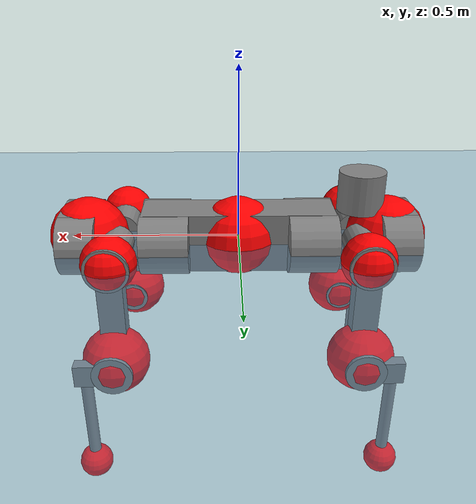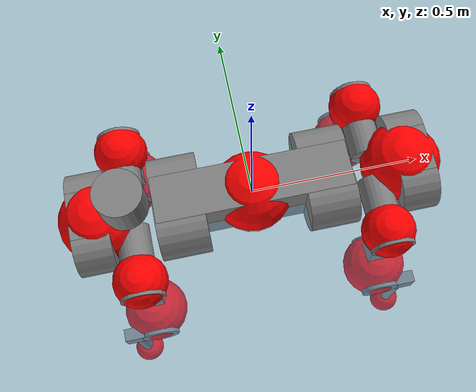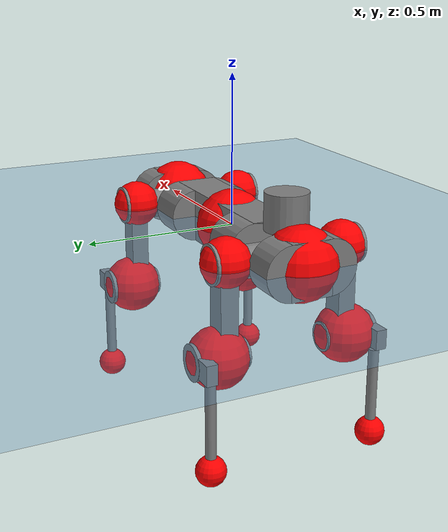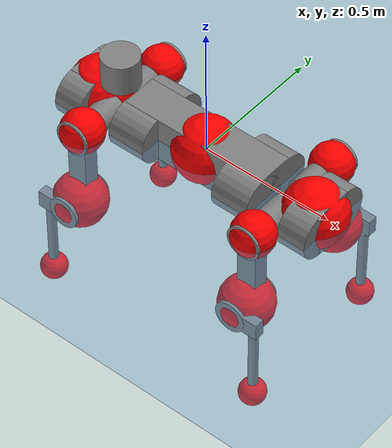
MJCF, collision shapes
<mujoco model="anymal_c">
  <compiler angle="radian" assetdir="assets" balanceinertia="true" inertiafromgeom="false"/>

  <option timestep="0.005" density="1.2" viscosity="2e-05"/>

  <size nkey="1"/>

  <visual>
    <quality shadowsize="8192"/>
    <map shadowclip="0.5"/>
  </visual>

  <default>
    <default class="/">
      <material specular="0" shininess="0.25"/>
      <geom contype="0" conaffinity="0" group="1" solref="-1000 -80"/>
      <site size="0.01 0.005 0.005" group="5"/>
      <general forcelimited="true" forcerange="-80 80" biastype="affine" gainprm="80" biasprm="0 -80 -2"/>
      <default class="anymal_c">
        <joint armature="0.01" damping="0.01" frictionloss="0.1"/>
        <default class="visual">
          <geom type="mesh" group="2"/>
          <default class="visual_zflip"/>
        </default>
        <default class="collision">
          <geom type="cylinder" group="3"/>
          <default class="foot">
            <geom size="0.03 0 0" type="sphere" condim="6" priority="1" friction="0.8 0.02 0.01" solimp="0.015 1 0.03"/>
          </default>
        </default>
      </default>
      <default class="reward_collision_sphere">
        <geom group="5" rgba="1 0 0 1"/>
      </default>
    </default>
  </default>

  <asset>
    <texture type="skybox" colorspace="auto" name="//unnamed_texture_0" builtin="gradient" rgb1="0.95 0.95 0.95" rgb2="0.95 0.95 0.95" width="100" height="600"/>
    <texture type="2d" colorspace="auto" name="texplane" builtin="checker" rgb1="0.345 0.575 0.748" rgb2="0.345 0.575 0.748" markrgb="1 1 1" width="512" height="512"/>
    <texture type="2d" colorspace="linear" name="base" file="base.png"/>
    <texture type="2d" colorspace="linear" name="top_shell" file="top_shell.png"/>
    <texture type="2d" colorspace="linear" name="bottom_shell" file="bottom_shell.png"/>
    <texture type="2d" colorspace="linear" name="remote" file="remote.png"/>
    <texture type="2d" colorspace="linear" name="hatch" file="hatch.png"/>
    <texture type="2d" colorspace="linear" name="handle" file="handle.png"/>
    <texture type="2d" colorspace="linear" name="face" file="face.png"/>
    <texture type="2d" colorspace="linear" name="battery" file="battery.png"/>
    <texture type="2d" colorspace="linear" name="lidar_cage" file="lidar_cage.png"/>
    <texture type="2d" colorspace="linear" name="depth_camera" file="depth_camera.png"/>
    <texture type="2d" colorspace="linear" name="wide_angle_camera" file="wide_angle_camera.png"/>
    <texture type="2d" colorspace="linear" name="lidar" file="lidar.png"/>
    <texture type="2d" colorspace="linear" name="drive" file="drive.png"/>
    <texture type="2d" colorspace="linear" name="hip_l" file="hip_l.png"/>
    <texture type="2d" colorspace="linear" name="shank_l" file="shank_l.png"/>
    <texture type="2d" colorspace="linear" name="foot" file="foot.png"/>
    <texture type="2d" colorspace="linear" name="thigh" file="thigh.png"/>
    <texture type="2d" colorspace="linear" name="shank_r" file="shank_r.png"/>
    <texture type="2d" colorspace="linear" name="hip_r" file="hip_r.png"/>
    <material name="MatPlane" class="/" texture="texplane" texuniform="true" texrepeat="2 2" specular="0.9" shininess="0.5"/>
    <material name="black_plastic" class="/" rgba="0.007 0.007 0.007 1"/>
    <material name="green" class="/" rgba="0.052 0.178 0.033 1"/>
    <material name="red" class="/" rgba="0.178 0.006 0.005 1"/>
    <material name="yellow" class="/" rgba="0.178 0.119 0.006 1"/>
    <material name="lwl" class="/" rgba="0.8 0.8 0.8 1"/>
    <material name="base" class="/" texture="base"/>
    <material name="top_shell" class="/" texture="top_shell"/>
    <material name="bottom_shell" class="/" texture="bottom_shell"/>
    <material name="hip_l" class="/" texture="hip_l"/>
    <material name="thigh" class="/" texture="thigh"/>
    <material name="shank_l" class="/" texture="shank_l"/>
    <material name="foot" class="/" texture="foot"/>
    <material name="hip_r" class="/" texture="hip_r"/>
    <material name="shank" class="/" texture="shank_r"/>
    <material name="hatch" class="/" texture="hatch"/>
    <material name="remote" class="/" texture="remote"/>
    <material name="handle" class="/" texture="handle"/>
    <material name="face" class="/" texture="face"/>
    <material name="depth_camera" class="/" texture="depth_camera"/>
    <material name="wide_angle_camera" class="/" texture="wide_angle_camera"/>
    <material name="battery" class="/" texture="battery"/>
    <material name="lidar_cage" class="/" texture="lidar_cage"/>
    <material name="lidar" class="/" texture="lidar"/>
    <material name="drive" class="/" texture="drive"/>
    <mesh name="base_0" class="/" file="base_0.obj"/>
    <mesh name="base_1" class="/" file="base_1.obj"/>
    <mesh name="base_2" class="/" file="base_2.obj"/>
    <mesh name="base_3" class="/" file="base_3.obj"/>
    <mesh name="base_4" class="/" file="base_4.obj"/>
    <mesh name="base_5" class="/" file="base_5.obj"/>
    <mesh name="top_shell" class="/" file="top_shell.obj"/>
    <mesh name="bottom_shell" class="/" file="bottom_shell.obj"/>
    <mesh name="remote" class="/" file="remote.obj"/>
    <mesh name="handle" class="/" file="handle.obj"/>
    <mesh name="face" class="/" file="face.obj"/>
    <mesh name="wide_angle_camera" class="/" file="wide_angle_camera.obj"/>
    <mesh name="depth_camera" class="/" file="depth_camera.obj"/>
    <mesh name="battery" class="/" file="battery.obj"/>
    <mesh name="lidar_cage" class="/" file="lidar_cage.obj"/>
    <mesh name="lidar" class="/" file="lidar.obj"/>
    <mesh name="drive" class="/" file="drive.obj"/>
    <mesh name="hip_l" class="/" file="hip_l.obj"/>
    <mesh name="thigh" class="/" file="thigh.obj"/>
    <mesh name="shank_l" class="/" file="shank_l.obj"/>
    <mesh name="foot" class="/" file="foot.obj"/>
    <mesh name="hip_r" class="/" file="hip_r.obj"/>
    <mesh name="hatch" class="/" file="hatch.obj"/>
    <mesh name="shank_r" class="/" file="shank_r.obj"/>
  </asset>

  <worldbody>
    <geom name="floor" class="/" size="100 100 0.125" type="plane" group="0" material="MatPlane"/>
    <light name="toplight_shadow" class="/" pos="0 0 5" dir="0.0990148 0.0990148 -0.990148" type="directional" ambient="0.04 0.04 0.04" diffuse="0.55 0.55 0.55" specular="0.12 0.12 0.12"/>
    <light name="toplight_fill" class="/" pos="0 0 5" dir="0.0990148 0.0990148 -0.990148" type="directional" castshadow="false" ambient="0.04 0.04 0.04" diffuse="0.3 0.3 0.3" specular="0.08 0.08 0.08"/>
    <body name="trunk" childclass="anymal_c" pos="0.000317284 1.33846e-05 0.000836756" quat="1 1.51486e-06 -6.89407e-06 -3.71602e-06">
      <inertial pos="0.00281288 -0.00217402 0.0514603" quat="0.497831 0.501688 0.500632 0.499842" mass="17.8162" diaginertia="0.59982 0.362527 0.276038"/>
      <joint name="//unnamed_joint_0" type="free" armature="0" damping="0" frictionloss="0"/>
      <geom name="//unnamed_geom_1" class="visual" material="green" mesh="base_0"/>
      <geom name="//unnamed_geom_2" class="visual" material="yellow" mesh="base_1"/>
      <geom name="//unnamed_geom_3" class="visual" material="red" mesh="base_2"/>
      <geom name="//unnamed_geom_4" class="visual" material="black_plastic" mesh="base_3"/>
      <geom name="//unnamed_geom_5" class="visual" material="lwl" mesh="base_4"/>
      <geom name="//unnamed_geom_6" class="visual" material="base" mesh="base_5"/>
      <geom name="trunk_1" class="collision" size="0.285674 0.0689557 0.0886574" type="box"/>
      <geom name="trunk_2" class="collision" size="0.0886574 0.0714184" pos="0.217109 0.0632938 0" quat="0.707107 0 0.707107 0"/>
      <geom name="trunk_3" class="collision" size="0.0886574 0.0714184" pos="-0.217109 0.0632938 0" quat="0.707107 0 0.707107 0"/>
      <geom name="trunk_4" class="collision" size="0.0886574 0.0714184" pos="0.217109 -0.0632938 0" quat="0.707107 0 0.707107 0"/>
      <geom name="trunk_5" class="collision" size="0.0886574 0.0714184" pos="-0.217109 -0.0632938 0" quat="0.707107 0 0.707107 0"/>
      <geom name="//unnamed_geom_12" class="visual" material="top_shell" mesh="top_shell"/>
      <geom name="//unnamed_geom_13" class="visual" material="bottom_shell" mesh="bottom_shell"/>
      <geom name="//unnamed_geom_14" class="visual" material="remote" mesh="remote"/>
      <geom name="//unnamed_geom_15" class="visual" material="handle" mesh="handle"/>
      <geom name="//unnamed_geom_16" class="visual" pos="0.413755 0 0" quat="1 0 0 0" material="face" mesh="face"/>
      <geom name="trunk_6" class="collision" size="0.0541795 0.0689557 0.0886574" pos="0.468656 0 0" type="box"/>
      <geom name="//unnamed_geom_18" class="collision" size="0.0886574 0.0541795" pos="0.468656 0.0632938 0" quat="0.707107 0 0.707107 0"/>
      <geom name="//unnamed_geom_19" class="collision" size="0.0886574 0.0541795" pos="0.468656 -0.0632938 0" quat="0.707107 0 0.707107 0"/>
      <geom name="//unnamed_geom_20" class="visual" pos="0.460823 0 -0.0311584" quat="0.965926 0 0.258819 0" material="depth_camera" mesh="depth_camera"/>
      <geom name="//unnamed_geom_21" class="visual" pos="0.512078 0 0.0157611" material="wide_angle_camera" mesh="wide_angle_camera"/>
      <geom name="//unnamed_geom_22" class="visual_zflip" pos="-0.413755 0 0" quat="0 0 0 1" material="face" mesh="face"/>
      <geom name="trunk_7" class="collision" size="0.0541795 0.0689557 0.0886574" pos="-0.468656 0 0" quat="0 0 0 1" type="box"/>
      <geom name="//unnamed_geom_24" class="collision" size="0.0886574 0.0541795" pos="-0.468656 -0.0632938 0" quat="0 -0.707107 0 0.707107"/>
      <geom name="//unnamed_geom_25" class="collision" size="0.0886574 0.0541795" pos="-0.468656 0.0632938 0" quat="0 -0.707107 0 0.707107"/>
      <geom name="//unnamed_geom_26" class="visual" pos="-0.460823 0 -0.0311584" quat="0 -0.258819 0 0.965926" material="depth_camera" mesh="depth_camera"/>
      <geom name="//unnamed_geom_27" class="visual_zflip" pos="-0.512078 0 0.0157611" quat="0 0 0 1" material="wide_angle_camera" mesh="wide_angle_camera"/>
      <geom name="//unnamed_geom_28" class="visual" material="battery" mesh="battery"/>
      <geom name="//unnamed_geom_29" class="visual" pos="0 0.0679036 0.0301699" quat="0.683013 -0.183013 0.183013 0.683013" material="depth_camera" mesh="depth_camera"/>
      <geom name="//unnamed_geom_30" class="visual" pos="0 -0.0679036 0.0301699" quat="0.683013 0.183013 0.183013 -0.683013" material="depth_camera" mesh="depth_camera"/>
      <geom name="//unnamed_geom_31" class="visual" pos="-0.363346 0 0.0773841" quat="1 0 0 0" material="lidar_cage" mesh="lidar_cage"/>
      <geom name="trunk_8" class="collision" size="0.0689557 0.0591049" pos="-0.363346 0 0.140555"/>
      <geom name="//unnamed_geom_33" class="visual" pos="-0.363346 -3.69322e-05 0.149715" quat="0.707107 0 0 -0.707107" material="lidar" mesh="lidar"/>
      <geom name="//unnamed_geom_34" class="visual" pos="0.299361 0.0940893 -2.5642e-09" quat="0.258819 0.965926 0 0" material="drive" mesh="drive"/>
      <geom name="//unnamed_geom_35" class="visual" pos="0.299361 -0.0940893 2.5642e-09" quat="0.258819 -0.965926 0 0" material="drive" mesh="drive"/>
      <geom name="//unnamed_geom_36" class="visual" pos="-0.299361 0.0940893 2.5642e-09" quat="0 0 0.965926 -0.258819" material="drive" mesh="drive"/>
      <geom name="//unnamed_geom_37" class="visual" pos="-0.299361 -0.0940893 -2.5642e-09" quat="0 0 -0.965926 -0.258819" material="drive" mesh="drive"/>
      <geom name="//unnamed_geom_38" class="visual" pos="0.115792 0 0.0768577" quat="1 0 0 0" material="hatch" mesh="hatch"/>
      <geom name="//unnamed_geom_39" class="reward_collision_sphere" size="0.11821"/>
      <geom name="//unnamed_geom_40" class="reward_collision_sphere" size="0.11821" pos="0.449191 0 0"/>
      <geom name="//unnamed_geom_41" class="reward_collision_sphere" size="0.11821" pos="-0.449191 0 0"/>
      <site name="imu" pos="0.245656 0.00865625 0.0497705" size="0.00985082"/>
      <camera name="track" pos="0 -1.80839 0" quat="0.707107 0.707107 0 0" mode="trackcom"/>
      <camera name="ego_camera" pos="0.449191 0 -0.0421138" quat="-0.5 -0.5 0.5 0.5"/>
      <body name="LF_HIP" pos="0.300406 0.0944775 -0.000496035" quat="0.25895 0.965891 -0.000147246 -5.93108e-05">
        <inertial pos="0.0566531 -0.0144107 -0.00839472" quat="-0.121228 0.705112 -0.141934 0.684088" mass="2.6445" diaginertia="0.00577245 0.00300273 0.00424679"/>
        <joint name="LF_HAA" pos="0 0 0" axis="0.999995 -0.00251464 -0.00200917" range="-0.703535 0.488936" armature="0.00970961" damping="0.0108782" frictionloss="0.0992165"/>
        <geom name="//unnamed_geom_42" class="visual" pos="0 -0.00015084 2.47753e-05" quat="0.258819 -0.965926 0 0" material="hip_l" mesh="hip_l"/>
        <geom name="//unnamed_geom_43" class="visual" pos="0.0597923 -0.0712662 -0.0422451" quat="0.183013 -0.683013 0.683013 0.183013" material="drive" mesh="drive"/>
        <geom name="//unnamed_geom_44" class="collision" size="0.0492541 0.0689557" pos="0.0597923 -0.010814 -0.0072699" quat="-0.353553 -0.612372 0.612372 -0.353553"/>
        <body name="LF_THIGH" pos="0.0611696 -0.0669689 -0.045582" quat="0.183768 -0.683417 0.682405 0.183017">
          <inertial pos="0.0312218 0.00226499 -0.258873" quat="0.992882 -0.00813678 -0.0796657 0.0881665" mass="2.90433" diaginertia="0.029404 0.0184961 0.00540015"/>
          <joint name="LF_HFE" pos="0 0 0" axis="0.999997 0.00227836 0.000130076" range="-3.1476 3.10294" armature="0.01091" damping="0.0110838" frictionloss="0.10157"/>
          <geom name="//unnamed_geom_45" class="visual" pos="0.00187034 2.94721e-06 0" quat="0.707107 0 0 -0.707107" material="thigh" mesh="thigh"/>
          <geom name="//unnamed_geom_46" class="collision" size="0.0640303 0.0394033" pos="0.0399281 0 0" quat="0.5 0.5 -0.5 -0.5"/>
          <geom name="//unnamed_geom_47" class="collision" size="0.0369406 0.0295525 0.139206" pos="0.0299461 0 -0.148782" quat="0.707107 0 0 -0.707107" type="box"/>
          <geom name="//unnamed_geom_48" class="visual" pos="0.10012 0 -0.300061" quat="1 0 0 0" material="drive" mesh="drive"/>
          <geom name="//unnamed_geom_49" class="collision" size="0.0492541 0.0689557" pos="0.0302455 0 -0.300061" quat="0.707107 0 0.707107 0"/>
          <geom name="//unnamed_geom_50" class="reward_collision_sphere" size="0.0788065" pos="0.0249551 0 0"/>
          <body name="LF_SHANK" pos="0.100528 -0.000155432 -0.300076" quat="1 1.7444e-05 -0.000159909 0.000310251">
            <inertial pos="0.00397467 -0.0550636 -0.0858744" quat="0.99335 -0.111761 -0.00257739 -0.0275588" mass="0.557416" diaginertia="0.0100834 0.0057207 0.00144236"/>
            <joint name="LF_KFE" pos="0 0 0" axis="1 -0.000803456 5.10377e-05" range="-3.09687 3.15457" armature="0.0102009" damping="0" frictionloss="0.0940451"/>
            <geom name="//unnamed_geom_51" class="visual" pos="0.000609876 0.00325189 0" quat="0.707107 0 0 -0.707107" material="shank_l" mesh="shank_l"/>
            <geom name="LF_kfe_act" class="collision" size="0.0591049 0.0197016" pos="0.0199641 0 0" quat="0.5 0.5 -0.5 -0.5"/>
            <geom name="//unnamed_geom_53" class="collision" size="0.0566412 0.0332465 0.0187166" pos="0.0199641 -0.0519904 0" quat="0.5 0.5 -0.5 -0.5" type="box"/>
            <geom name="//unnamed_geom_54" class="visual" pos="0.0130264 -0.0784762 -0.35583" quat="0.382683 0 0 -0.92388" material="foot" mesh="foot"/>
            <geom name="LF_calf" class="collision" size="0.0172389 0.139145" pos="0.0130265 -0.0795242 -0.177915" quat="0.707107 0 0 -0.707107"/>
            <geom name="LF_foot" class="foot" size="0.0304566" pos="0.0130265 -0.0795242 -0.332141" quat="0.707107 0 0 -0.707107"/>
            <geom name="//unnamed_geom_57" class="reward_collision_sphere" size="0.0985082" pos="-0.0499101 0 0"/>
            <geom name="//unnamed_geom_58" class="reward_collision_sphere" size="0.0492541" pos="0.0130265 -0.0795242 -0.332141"/>
            <site name="LF_foot" class="foot" pos="0.0130265 -0.0795242 -0.332141" quat="0.707107 0 0 -0.707107" size="0.00985082"/>
          </body>
        </body>
      </body>
      <body name="RF_HIP" pos="0.297853 -0.0933941 -0.00230516" quat="0.259206 -0.965822 0.000220284 6.1887e-05">
        <inertial pos="0.0562171 0.0131399 -0.00794974" quat="0.127844 0.678371 0.129938 0.711748" mass="2.68035" diaginertia="0.0057652 0.0029733 0.00418798"/>
        <joint name="RF_HAA" pos="0 0 0" axis="0.999999 0.000927606 -0.000401164" range="-0.483643 0.74921" armature="0.0103674" damping="0.0137192" frictionloss="0.0950239"/>
        <geom name="//unnamed_geom_59" class="visual" pos="0 0.000150839 2.47753e-05" quat="0.258819 0.965926 0 0" material="hip_r" mesh="hip_r"/>
        <geom name="//unnamed_geom_60" class="visual" pos="0.0597923 0.0712662 -0.0422451" quat="0.183013 0.683013 0.683013 -0.183013" material="drive" mesh="drive"/>
        <geom name="//unnamed_geom_61" class="collision" size="0.0492541 0.0689557" pos="0.0597923 0.010814 -0.0072699" quat="-0.353553 0.612372 0.612372 0.353553"/>
        <body name="RF_THIGH" pos="0.0610777 0.0674343 -0.0463461" quat="0.183027 0.68303 0.682995 -0.183003">
          <inertial pos="0.0300742 3.32764e-05 -0.256598" quat="0.992575 -0.00786542 -0.0844116 0.0872178" mass="2.90886" diaginertia="0.0299914 0.0180862 0.0054189"/>
          <joint name="RF_HFE" pos="0 0 0" axis="0.999979 -0.00365318 -0.0054214" stiffness="0.0134902" range="-3.13586 3.11953" armature="0.00916442" damping="0.016534" frictionloss="0.0999593"/>
          <geom name="//unnamed_geom_62" class="visual" pos="0.00187034 2.94721e-06 0" quat="0.707107 0 0 -0.707107" material="thigh" mesh="thigh"/>
          <geom name="//unnamed_geom_63" class="collision" size="0.0640303 0.0394033" pos="0.0399281 0 0" quat="0.5 0.5 0.5 0.5"/>
          <geom name="//unnamed_geom_64" class="collision" size="0.0369406 0.0295525 0.139206" pos="0.0299461 0 -0.148782" quat="0.707107 0 0 0.707107" type="box"/>
          <geom name="//unnamed_geom_65" class="visual" pos="0.10012 0 -0.300061" quat="1 0 0 0" material="drive" mesh="drive"/>
          <geom name="//unnamed_geom_66" class="collision" size="0.0492541 0.0689557" pos="0.0302455 0 -0.300061" quat="0.707107 0 0.707107 0"/>
          <geom name="//unnamed_geom_67" class="reward_collision_sphere" size="0.0788065" pos="0.0249551 0 0"/>
          <body name="RF_SHANK" pos="0.101171 -0.00086762 -0.298181" quat="1 -3.52148e-05 6.21482e-05 -6.96796e-06">
            <inertial pos="0.00602042 0.0553764 -0.0847458" quat="0.992395 0.120523 -0.00285267 0.0248492" mass="0.577457" diaginertia="0.0104723 0.00574869 0.00149359"/>
            <joint name="RF_KFE" pos="0 0 0" axis="0.999996 0.000504776 -0.00265373" range="-3.15661 3.12491" armature="0.00970263" damping="0" frictionloss="0.103415"/>
            <geom name="//unnamed_geom_68" class="visual" pos="0.000609873 -0.00325189 0" quat="0.707107 0 0 0.707107" material="shank" mesh="shank_r"/>
            <geom name="RF_kfe_act" class="collision" size="0.0591049 0.0197016" pos="0.0199641 0 0" quat="0.5 0.5 0.5 0.5"/>
            <geom name="//unnamed_geom_70" class="collision" size="0.0566412 0.0332465 0.0187166" pos="0.0199641 0.0519904 0" quat="0.5 0.5 0.5 0.5" type="box"/>
            <geom name="//unnamed_geom_71" class="visual" pos="0.0130267 0.0784762 -0.35583" quat="0.382683 0 0 0.92388" material="foot" mesh="foot"/>
            <geom name="RF_calf" class="collision" size="0.0172389 0.139145" pos="0.0130265 0.0795242 -0.177915" quat="0.707107 0 0 0.707107"/>
            <geom name="RF_foot" class="foot" size="0.0265834" pos="0.0130265 0.0795242 -0.332141" quat="0.707107 0 0 0.707107"/>
            <geom name="//unnamed_geom_74" class="reward_collision_sphere" size="0.0985082" pos="-0.0499101 0 0"/>
            <geom name="//unnamed_geom_75" class="reward_collision_sphere" size="0.0492541" pos="0.0130265 0.0795242 -0.332141"/>
            <site name="RF_foot" class="foot" pos="0.0130265 0.0795242 -0.332141" quat="0.707107 0 0 0.707107" size="0.00985082"/>
          </body>
        </body>
      </body>
      <body name="LH_HIP" pos="-0.298886 0.0935425 0.000617251" quat="7.30857e-05 -0.000288909 0.96592 -0.258839">
        <inertial pos="0.0566537 0.0140094 -0.00916262" quat="0.134636 0.680181 0.127121 0.709272" mass="2.6172" diaginertia="0.00588129 0.00304291 0.00428032"/>
        <joint name="LH_HAA" pos="0 0 0" axis="0.999981 0.0049511 0.00361116" range="-0.472553 0.741363" armature="0.00997756" damping="0.0107088" frictionloss="0.101712"/>
        <geom name="//unnamed_geom_76" class="visual" pos="0 0.000150839 2.47753e-05" quat="-0.258819 -0.965926 0 0" material="hip_r" mesh="hip_r"/>
        <geom name="//unnamed_geom_77" class="visual" pos="0.0597923 0.0712662 -0.0422451" quat="0.183013 0.683013 0.683013 -0.183013" material="drive" mesh="drive"/>
        <geom name="//unnamed_geom_78" class="collision" size="0.0492541 0.0689557" pos="0.0597923 0.010814 -0.0072699" quat="-0.353553 0.612372 0.612372 0.353553"/>
        <body name="LH_THIGH" pos="0.0591885 0.0669784 -0.0442575" quat="0.183521 0.683658 0.682252 -0.182933">
          <inertial pos="0.0307451 0.00220241 -0.259497" quat="0.992555 -0.00709214 -0.0829849 0.0888645" mass="2.86397" diaginertia="0.0302583 0.0179628 0.00551758"/>
          <joint name="LH_HFE" pos="0 0 0" axis="0.99994 -0.00496537 -0.00971727" range="-3.15118 3.1391" armature="0.00979246" damping="0.0116541" frictionloss="0.101436"/>
          <geom name="//unnamed_geom_79" class="visual" pos="0.00187034 2.94721e-06 0" quat="0.707107 0 0 -0.707107" material="thigh" mesh="thigh"/>
          <geom name="//unnamed_geom_80" class="collision" size="0.0640303 0.0394033" pos="0.0399281 0 0" quat="0.5 0.5 -0.5 -0.5"/>
          <geom name="//unnamed_geom_81" class="collision" size="0.0369406 0.0295525 0.139206" pos="0.0299461 0 -0.148782" quat="0.707107 0 0 -0.707107" type="box"/>
          <geom name="//unnamed_geom_82" class="visual" pos="0.10012 0 -0.300061" quat="1 0 0 0" material="drive" mesh="drive"/>
          <geom name="//unnamed_geom_83" class="collision" size="0.0492541 0.0689557" pos="0.0302455 0 -0.300061" quat="0.707107 0 0.707107 0"/>
          <geom name="//unnamed_geom_84" class="reward_collision_sphere" size="0.0788065" pos="0.0249551 0 0"/>
          <body name="LH_SHANK" pos="0.100996 -0.00181021 -0.300788" quat="1 -0.000234518 0.000517251 -5.84167e-05">
            <inertial pos="0.00547705 0.0562247 -0.0854536" quat="0.99275 0.117461 -0.000596072 0.0255086" mass="0.57007" diaginertia="0.0100695 0.00557324 0.00144002"/>
            <joint name="LH_KFE" pos="0 0 0" axis="1 1.83096e-05 -9.45182e-05" range="-3.10415 3.14376" armature="0.0109241" damping="0.0102018" frictionloss="0.099348"/>
            <geom name="//unnamed_geom_85" class="visual" pos="0.000609873 -0.00325189 0" quat="-0.707107 0 0 -0.707107" material="shank" mesh="shank_r"/>
            <geom name="LH_kfe_act" class="collision" size="0.0591049 0.0197016" pos="0.0199641 0 0" quat="0.5 0.5 -0.5 -0.5"/>
            <geom name="//unnamed_geom_87" class="collision" size="0.0566412 0.0332465 0.0187166" pos="0.0199641 0.0519904 0" quat="0.5 0.5 -0.5 -0.5" type="box"/>
            <geom name="//unnamed_geom_88" class="visual" pos="0.0130267 0.0784762 -0.35583" quat="-0.382683 0 0 -0.92388" material="foot" mesh="foot"/>
            <geom name="LH_calf" class="collision" size="0.0172389 0.139145" pos="0.0130265 0.0795242 -0.177915" quat="0.707107 0 0 -0.707107"/>
            <geom name="LH_foot" class="foot" size="0.0306694" pos="0.0130265 0.0795242 -0.332141" quat="0.707107 0 0 -0.707107"/>
            <geom name="//unnamed_geom_91" class="reward_collision_sphere" size="0.0985082" pos="-0.0499101 0 0"/>
            <geom name="//unnamed_geom_92" class="reward_collision_sphere" size="0.0492541" pos="0.0130265 0.0795242 -0.332141"/>
            <site name="LH_foot" class="foot" pos="0.0130265 0.0795242 -0.332141" quat="0.707107 0 0 -0.707107" size="0.00985082"/>
          </body>
        </body>
      </body>
      <body name="RH_HIP" pos="-0.30139 -0.0949501 -0.000197786" quat="0.000322235 0.0006203 -0.966199 -0.257795">
        <inertial pos="0.0567603 -0.0131407 -0.00927448" quat="-0.127985 0.710108 -0.136054 0.678864" mass="2.6906" diaginertia="0.0058695 0.00297198 0.00442411"/>
        <joint name="RH_HAA" pos="0 0 0" axis="0.999993 0.00166087 0.00323154" range="-0.71936 0.495918" armature="0.0106622" damping="0.00901086" frictionloss="0.096891"/>
        <geom name="//unnamed_geom_93" class="visual" pos="0 -0.00015084 2.47753e-05" quat="-0.258819 0.965926 0 0" material="hip_l" mesh="hip_l"/>
        <geom name="//unnamed_geom_94" class="visual" pos="0.0597923 -0.0712662 -0.0422451" quat="-0.183013 0.683013 -0.683013 -0.183013" material="drive" mesh="drive"/>
        <geom name="//unnamed_geom_95" class="collision" size="0.0492541 0.0689557" pos="0.0597923 -0.010814 -0.0072699" quat="0.353553 0.612372 -0.612372 0.353553"/>
        <body name="RH_THIGH" pos="0.0596452 -0.0651671 -0.0442132" quat="-0.182553 0.683218 -0.683 -0.182755">
          <inertial pos="0.0309655 -0.00062806 -0.258784" quat="0.99325 -0.00360267 -0.080364 0.0835664" mass="2.8935" diaginertia="0.0296458 0.0181525 0.00539585"/>
          <joint name="RH_HFE" pos="0 0 0" axis="1 0.000286576 -0.000723878" range="-3.13307 3.18806" armature="0.00884088" damping="0.0132063" frictionloss="0.0966504"/>
          <geom name="//unnamed_geom_96" class="visual" pos="0.00187034 2.94721e-06 0" quat="0.707107 0 0 -0.707107" material="thigh" mesh="thigh"/>
          <geom name="//unnamed_geom_97" class="collision" size="0.0640303 0.0394033" pos="0.0399281 0 0" quat="0.5 0.5 0.5 0.5"/>
          <geom name="//unnamed_geom_98" class="collision" size="0.0369406 0.0295525 0.139206" pos="0.0299461 0 -0.148782" quat="0.707107 0 0 0.707107" type="box"/>
          <geom name="//unnamed_geom_99" class="visual" pos="0.10012 0 -0.300061" quat="1 0 0 0" material="drive" mesh="drive"/>
          <geom name="//unnamed_geom_100" class="collision" size="0.0492541 0.0689557" pos="0.0302455 0 -0.300061" quat="0.707107 0 0.707107 0"/>
          <geom name="//unnamed_geom_101" class="reward_collision_sphere" size="0.0788065" pos="0.0249551 0 0"/>
          <body name="RH_SHANK" pos="0.0993896 0.000669147 -0.300416" quat="1 -0.00013823 4.57025e-05 -3.75875e-05">
            <inertial pos="0.00613823 -0.0551414 -0.0850787" quat="0.992965 -0.115663 -0.000348991 -0.0253513" mass="0.561617" diaginertia="0.00996953 0.00551655 0.00143657"/>
            <joint name="RH_KFE" pos="0 0 0" axis="0.999996 -0.00272251 -0.00114335" range="-3.09202 3.1183" armature="0.00947827" damping="0.00905869" frictionloss="0.0953575"/>
            <geom name="//unnamed_geom_102" class="visual" pos="0.000609876 0.00325189 0" quat="0.707107 0 0 -0.707107" material="shank_l" mesh="shank_l"/>
            <geom name="RH_kfe_act" class="collision" size="0.0591049 0.0197016" pos="0.0199641 0 0" quat="0.5 0.5 0.5 0.5"/>
            <geom name="//unnamed_geom_104" class="collision" size="0.0566412 0.0332465 0.0187166" pos="0.0199641 -0.0519904 0" quat="0.5 0.5 0.5 0.5" type="box"/>
            <geom name="//unnamed_geom_105" class="visual" pos="0.0130264 -0.0784762 -0.35583" quat="0.382683 0 0 -0.92388" material="foot" mesh="foot"/>
            <geom name="RH_calf" class="collision" size="0.0172389 0.139145" pos="0.0130265 -0.0795242 -0.177915" quat="0.707107 0 0 0.707107"/>
            <geom name="RH_foot" class="foot" size="0.0294943" pos="0.0130265 -0.0795242 -0.332141" quat="0.707107 0 0 0.707107"/>
            <geom name="//unnamed_geom_108" class="reward_collision_sphere" size="0.0985082" pos="-0.0499101 0 0"/>
            <geom name="//unnamed_geom_109" class="reward_collision_sphere" size="0.0492541" pos="0.0130265 -0.0795242 -0.332141"/>
            <site name="RH_foot" class="foot" pos="0.0130265 -0.0795242 -0.332141" quat="0.707107 0 0 0.707107" size="0.00985082"/>
          </body>
        </body>
      </body>
    </body>
  </worldbody>

  <contact>
    <pair class="/" geom1="floor" geom2="LF_foot" name="//unnamed_contact_0"/>
    <pair class="/" geom1="floor" geom2="RF_foot" name="//unnamed_contact_1"/>
    <pair class="/" geom1="floor" geom2="LH_foot" name="//unnamed_contact_2"/>
    <pair class="/" geom1="floor" geom2="RH_foot" name="//unnamed_contact_3"/>
  </contact>

  <actuator>
    <general name="LF_HAA" class="/" joint="LF_HAA" forcerange="-77.3333 77.3333" gainprm="79.9586" biasprm="0 -79.9586 -1.87904"/>
    <general name="LF_HFE" class="/" joint="LF_HFE" forcerange="-79.1821 79.1821" gainprm="79.9586" biasprm="0 -79.9586 -1.87904"/>
    <general name="LF_KFE" class="/" joint="LF_KFE" forcerange="-80.6633 80.6633" gainprm="79.9586" biasprm="0 -79.9586 -1.87904"/>
    <general name="RF_HAA" class="/" joint="RF_HAA" forcerange="-82.1387 82.1387" gainprm="79.9586" biasprm="0 -79.9586 -1.87904"/>
    <general name="RF_HFE" class="/" joint="RF_HFE" forcerange="-79.6825 79.6825" gainprm="79.9586" biasprm="0 -79.9586 -1.87904"/>
    <general name="RF_KFE" class="/" joint="RF_KFE" forcerange="-77.8193 77.8193" gainprm="79.9586" biasprm="0 -79.9586 -1.87904"/>
    <general name="LH_HAA" class="/" joint="LH_HAA" forcerange="-81.1312 81.1312" gainprm="79.9586" biasprm="0 -79.9586 -1.87904"/>
    <general name="LH_HFE" class="/" joint="LH_HFE" forcerange="-78.8009 78.8009" gainprm="79.9586" biasprm="0 -79.9586 -1.87904"/>
    <general name="LH_KFE" class="/" joint="LH_KFE" forcerange="-76.5533 76.5533" gainprm="79.9586" biasprm="0 -79.9586 -1.87904"/>
    <general name="RH_HAA" class="/" joint="RH_HAA" forcerange="-82.0753 82.0753" gainprm="79.9586" biasprm="0 -79.9586 -1.87904"/>
    <general name="RH_HFE" class="/" joint="RH_HFE" forcerange="-76.133 76.133" gainprm="79.9586" biasprm="0 -79.9586 -1.87904"/>
    <general name="RH_KFE" class="/" joint="RH_KFE" forcerange="-83.6218 83.6218" gainprm="79.9586" biasprm="0 -79.9586 -1.87904"/>
  </actuator>

  <sensor>
    <gyro site="imu" name="imu_angular_velocity"/>
    <velocimeter site="imu" name="imu_linear_velocity"/>
    <framelinvel objtype="site" objname="LF_foot" name="LF_foot_global_linear_velocity"/>
    <framelinvel objtype="site" objname="RF_foot" name="RF_foot_global_linear_velocity"/>
    <framelinvel objtype="site" objname="LH_foot" name="LH_foot_global_linear_velocity"/>
    <framelinvel objtype="site" objname="RH_foot" name="RH_foot_global_linear_velocity"/>
  </sensor>

  <keyframe>
    <key name="home" qpos="0 0 0.55 1 0 0 0 0 0.4 -0.8 0 -0.4 0.8 0 -0.4 0.8 0 0.4 -0.8"/>
  </keyframe>
</mujoco>
